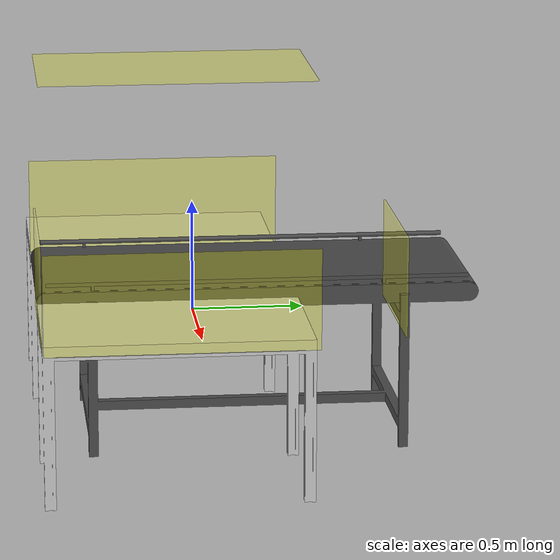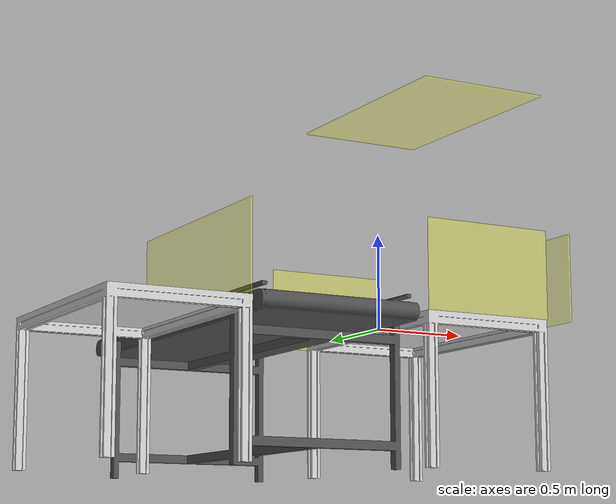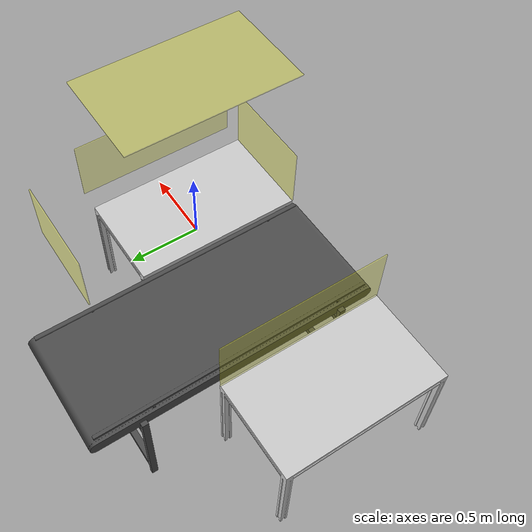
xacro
<?xml version="1.0"?>
<robot xmlns:xacro="http://www.ros.org/wiki/xacro" name="workspace_environment">

  <!-- Left cell: where each piece of the environment stands (the pieces are in inc/cell_environment.xacro) -->
  <xacro:property name="cell_with_world_link" value="true"/>
  <xacro:property name="cell_table_xyz" value="-0.15 -0.65 -0.75"/>
  <xacro:property name="cell_conveyor_xyz" value="-1.02 -0.70 -0.75"/>
  <xacro:property name="cell_table_2_xyz" value="-1.79 -0.65 -0.75"/>
  <xacro:property name="cell_first_barrier" value="right"/>
  <xacro:property name="cell_second_barrier" value="left"/>
  <xacro:property name="cell_second_barrier_xyz" value="0 -0.05 0.75"/>
  <xacro:property name="cell_back_barrier_xyz" value="0.85 -0.05 0.75"/>
  <xacro:property name="cell_front_barrier_xyz" value="-0.95 -0.05 0.75"/>
  <xacro:property name="cell_top_barrier_xyz" value="0 -0.05 1.9"/>

  <xacro:include filename="$(find ur_workspace_description)/urdf/inc/cell_environment.xacro"/>

</robot>

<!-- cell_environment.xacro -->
<robot xmlns:xacro="http://www.ros.org/wiki/xacro">

  <!-- Materials -->
  <xacro:include filename="$(find ur_workspace_description)/meshes/materials/materials.xacro" />

  <xacro:if value="${cell_with_world_link}">
    <!-- World Link -->
    <link name="world"/>
  </xacro:if>

  <!-- Main Table (First Table) -->
  <link name="table_top">
    <visual>
      <origin xyz="0 0 0" rpy="0 0 0"/>
      <geometry>
        <!-- Scale down from mm to m -->
        <mesh filename="package://ur_workspace_description/meshes/environment/table.stl" scale="0.001 0.001 0.001"/>
      </geometry>
      <material name="workspace_light_gray"/>
    </visual>
    <collision>
      <origin xyz="0 0 0" rpy="0 0 0"/>
      <geometry>
        <box size="1.2 0.7 0.75"/>
      </geometry>
    </collision>
  </link>

  <joint name="world_to_table" type="fixed">
    <parent link="world"/>
    <child link="table_top"/>
    <!-- Rotated 90 degrees around Z-axis like in reference file -->
    <origin xyz="${cell_table_xyz}" rpy="0 0 0"/>
  </joint>

  <!-- Conveyor Belt -->
  <link name="conveyor_belt">
    <visual>
      <origin xyz="0 0 0" rpy="0 0 0"/>
      <geometry>
        <!-- Scale down from mm to m -->
        <mesh filename="package://ur_workspace_description/meshes/environment/conveyor.stl" scale="0.001 0.001 0.001"/>
      </geometry>
      <material name="workspace_dark_gray"/>
    </visual>
    <collision>
      <origin xyz="0 0 0" rpy="0 0 0"/>
      <geometry>
        <box size="2.05 0.825 0.05"/>
      </geometry>
    </collision>
  </link>

  <joint name="world_to_conveyor" type="fixed">
    <parent link="world"/>
    <child link="conveyor_belt"/>
    <!-- Conveyor rotated 90 degrees and positioned between tables -->
    <origin xyz="${cell_conveyor_xyz}" rpy="0 0 0"/>
  </joint>

  <!-- Second Table -->
  <link name="table_top_2">
    <visual>
      <origin xyz="0 0 0" rpy="0 0 0"/>
      <geometry>
        <!-- Scale down from mm to m -->
        <mesh filename="package://ur_workspace_description/meshes/environment/table.stl" scale="0.001 0.001 0.001"/>
      </geometry>
      <material name="workspace_light_gray"/>
    </visual>
    <collision>
      <origin xyz="0 0 0" rpy="0 0 0"/>
      <geometry>
        <box size="1.2 0.7 0.75"/>
      </geometry>
    </collision>
  </link>

  <joint name="world_to_table_2" type="fixed">
    <parent link="world"/>
    <child link="table_top_2"/>
    <!-- Second table positioned on the other side of conveyor with 90-degree rotation -->
    <origin xyz="${cell_table_2_xyz}" rpy="0 0 0"/>
  </joint>

  <!-- Safety Barriers - Adjusted positions for 90-degree rotated tables -->
  <!-- Left Barrier (formerly Back Barrier) -->
  <link name="safety_barrier_${cell_first_barrier}">
    <visual>
      <origin xyz="0 0 0" rpy="0 0 0"/>
      <geometry>
        <!-- Scale down from mm to m -->
        <mesh filename="package://ur_workspace_description/meshes/environment/narrow_safety_barrier.stl" scale="0.001 0.001 0.001"/>
      </geometry>
      <material name="workspace_safety_yellow"/>
    </visual>
    <collision>
      <origin xyz="0 0 0.4" rpy="0 0 1.5708"/>
      <geometry>
        <box size="1.2 0.05 0.8"/>
      </geometry>
    </collision>
  </link>

  <joint name="table_to_barrier_${cell_first_barrier}" type="fixed">
    <parent link="table_top"/>
    <child link="safety_barrier_${cell_first_barrier}"/>
    <origin xyz="0 1.55 0.75" rpy="0 0 0"/>
  </joint>

  <!-- Right Barrier (formerly Front Barrier) -->
  <link name="safety_barrier_${cell_second_barrier}">
    <visual>
      <origin xyz="0 0 0" rpy="0 0 0"/>
      <geometry>
        <!-- Scale down from mm to m -->
        <mesh filename="package://ur_workspace_description/meshes/environment/narrow_safety_barrier.stl" scale="0.001 0.001 0.001"/>
      </geometry>
      <material name="workspace_safety_yellow"/>
    </visual>
    <collision>
      <origin xyz="0 0 0.4" rpy="0 0 1.5708"/>
      <geometry>
        <box size="1.2 0.05 0.8"/>
      </geometry>
    </collision>
  </link>

  <joint name="table_to_barrier_${cell_second_barrier}" type="fixed">
    <parent link="table_top"/>
    <child link="safety_barrier_${cell_second_barrier}"/>
    <origin xyz="${cell_second_barrier_xyz}" rpy="0 0 0"/>
  </joint>

  <!-- Back Barrier (formerly Right Barrier) -->
  <link name="safety_barrier_back">
    <visual>
      <origin xyz="0 0 0" rpy="0 0 0"/>
      <geometry>
        <!-- Scale down from mm to m -->
        <mesh filename="package://ur_workspace_description/meshes/environment/wide_safety_barrier.stl" scale="0.001 0.001 0.001"/>
      </geometry>
      <material name="workspace_safety_yellow"/>
    </visual>
    <collision>
      <origin xyz="0 0 0.4" rpy="0 0 1.5708"/>
      <geometry>
        <box size="0.05 0.7 0.8"/>
      </geometry>
    </collision>
  </link>

  <joint name="table_to_barrier_back" type="fixed">
    <parent link="table_top"/>
    <child link="safety_barrier_back"/>
    <origin xyz="${cell_back_barrier_xyz}" rpy="0 0 0"/>
  </joint>

  <!-- Front Barrier (formerly Left Barrier) -->
  <link name="safety_barrier_front">
    <visual>
      <origin xyz="0 0 0" rpy="0 0 0"/>
      <geometry>
        <!-- Scale down from mm to m -->
        <mesh filename="package://ur_workspace_description/meshes/environment/wide_safety_barrier.stl" scale="0.001 0.001 0.001"/>
      </geometry>
      <material name="workspace_safety_yellow"/>
    </visual>
    <collision>
      <origin xyz="0 0 0.4" rpy="0 0 1.5708"/>
      <geometry>
        <box size="0.05 0.7 0.8"/>
      </geometry>
    </collision>
  </link>

  <joint name="table_to_barrier_front" type="fixed">
    <parent link="table_top"/>
    <child link="safety_barrier_front"/>
    <origin xyz="${cell_front_barrier_xyz}" rpy="0 0 0"/>
  </joint>

  <!-- Top Barrier -->
  <link name="safety_barrier_top">
    <visual>
      <origin xyz="0 0 0" rpy="0 0 0"/>
      <geometry>
        <!-- Scale down from mm to m -->
        <mesh filename="package://ur_workspace_description/meshes/environment/top_safety_barrier.stl" scale="0.001 0.001 0.001"/>
      </geometry>
      <material name="workspace_safety_yellow"/>
    </visual>
    <collision>
      <origin xyz="0 0 0" rpy="0 0 0"/>
      <geometry>
        <box size="0.7 1.2 0.01"/>
      </geometry>
    </collision>
  </link>

  <joint name="table_to_barrier_top" type="fixed">
    <parent link="table_top"/>
    <child link="safety_barrier_top"/>
    <origin xyz="${cell_top_barrier_xyz}" rpy="0 0 0"/>
  </joint>

</robot>

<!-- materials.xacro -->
<robot xmlns:xacro="http://www.ros.org/wiki/xacro">

  <!-- Use unique prefix for workspace materials to avoid conflicts -->
  <material name="workspace_gray">
    <color rgba="0.5 0.5 0.5 1.0"/>
  </material>

  <material name="workspace_light_gray">
    <color rgba="0.8 0.8 0.8 1.0"/>
  </material>

  <material name="workspace_dark_gray">
    <color rgba="0.3 0.3 0.3 1.0"/>
  </material>

  <material name="workspace_safety_yellow">
    <color rgba="1.0 1.0 0.0 0.3"/>
  </material>

  <material name="workspace_conveyor_black">
    <color rgba="0.1 0.1 0.1 1.0"/>
  </material>

  <!-- Additional materials from target xacro -->
  <material name="workspace_white">
    <color rgba="1 1 1 1"/>
  </material>

  <material name="workspace_brown">
    <color rgba="0.4 0.2 0 1"/>
  </material>

  <material name="workspace_red_transparent">
    <color rgba="1.0 0.0 0.0 0.3"/>
  </material>

  <material name="workspace_dark_green_rubber">
    <color rgba="0 0.43 0 1"/>
  </material>

  <material name="workspace_gray_steel">
    <color rgba="0.5 0.5 0.5 1"/>
  </material>

  <material name="workspace_steel">
    <color rgba="0.5 0.5 0.5 1"/>
  </material>

</robot>
